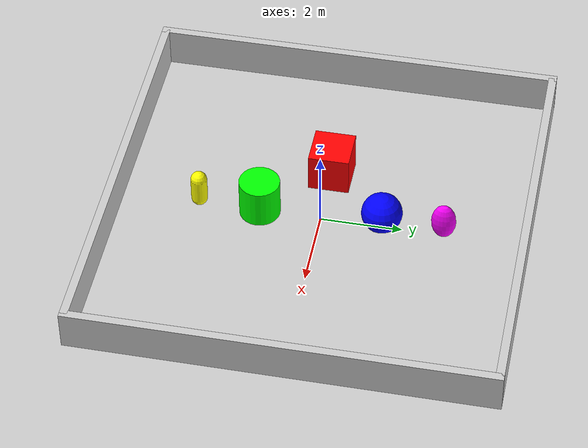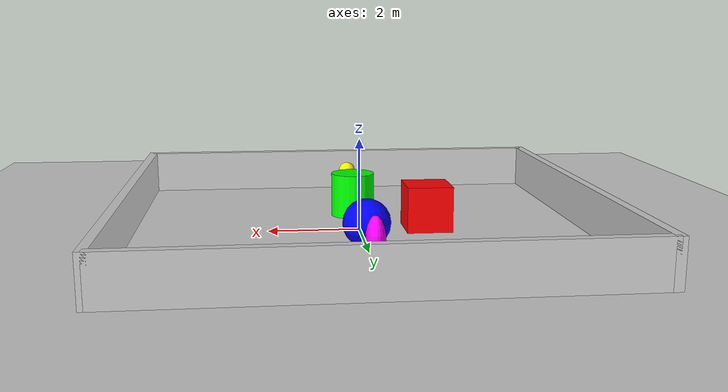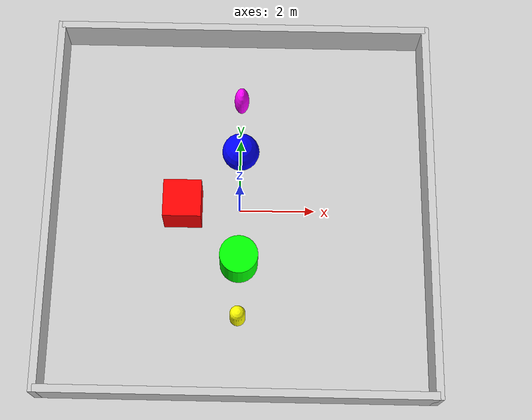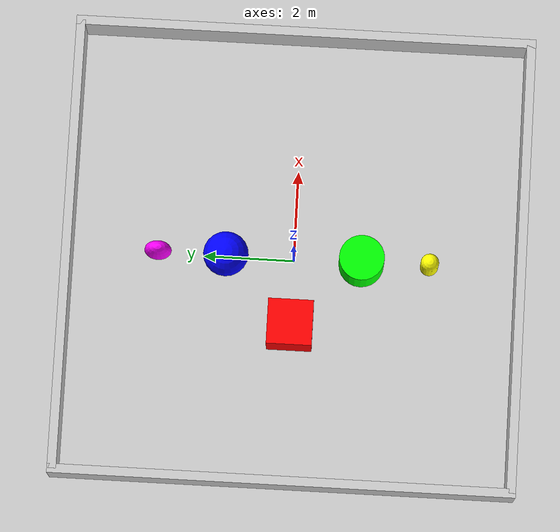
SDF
<sdf version='1.9'>
  <world name='minimal_scene'>
    <gui fullscreen='false'>
      <plugin name='3D View' filename='MinimalScene'>
        <ignition-gui>
          <title>3D View</title>
          <property type='bool' key='showTitleBar'>false</property>
          <property type='string' key='state'>docked</property>
        </ignition-gui>
        <engine>ogre2</engine>
        <scene>scene</scene>
        <ambient_light>0.4 0.4 0.4</ambient_light>
        <background_color>0.8 0.8 0.8</background_color>
        <camera_pose>-6 0 6 0 0.5 0</camera_pose>
        <camera_clip>
          <near>0.25</near>
          <far>25000</far>
        </camera_clip>
      </plugin>
      <plugin name='Entity context menu' filename='EntityContextMenuPlugin'>
        <ignition-gui>
          <property key='state' type='string'>floating</property>
          <property key='width' type='double'>5</property>
          <property key='height' type='double'>5</property>
          <property key='showTitleBar' type='bool'>false</property>
        </ignition-gui>
      </plugin>
      <plugin name='Scene Manager' filename='GzSceneManager'>
        <ignition-gui>
          <property key='resizable' type='bool'>false</property>
          <property key='width' type='double'>5</property>
          <property key='height' type='double'>5</property>
          <property key='state' type='string'>floating</property>
          <property key='showTitleBar' type='bool'>false</property>
        </ignition-gui>
      </plugin>
      <plugin name='Interactive view control' filename='InteractiveViewControl'>
        <ignition-gui>
          <property key='resizable' type='bool'>false</property>
          <property key='width' type='double'>5</property>
          <property key='height' type='double'>5</property>
          <property key='state' type='string'>floating</property>
          <property key='showTitleBar' type='bool'>false</property>
        </ignition-gui>
      </plugin>
      <plugin name='Camera Tracking' filename='CameraTracking'>
        <ignition-gui>
          <property key='resizable' type='bool'>false</property>
          <property key='width' type='double'>5</property>
          <property key='height' type='double'>5</property>
          <property key='state' type='string'>floating</property>
          <property key='showTitleBar' type='bool'>false</property>
        </ignition-gui>
      </plugin>
      <plugin name='Marker manager' filename='MarkerManager'>
        <ignition-gui>
          <property key='resizable' type='bool'>false</property>
          <property key='width' type='double'>5</property>
          <property key='height' type='double'>5</property>
          <property key='state' type='string'>floating</property>
          <property key='showTitleBar' type='bool'>false</property>
        </ignition-gui>
      </plugin>
      <plugin name='Select Entities' filename='SelectEntities'>
        <ignition-gui>
          <anchors target='Select entities'>
            <line own='right' target='right'/>
            <line own='top' target='top'/>
          </anchors>
          <property key='resizable' type='bool'>false</property>
          <property key='width' type='double'>5</property>
          <property key='height' type='double'>5</property>
          <property key='state' type='string'>floating</property>
          <property key='showTitleBar' type='bool'>false</property>
        </ignition-gui>
      </plugin>
      <plugin name='Visualization Capabilities' filename='VisualizationCapabilities'>
        <ignition-gui>
          <property key='resizable' type='bool'>false</property>
          <property key='width' type='double'>5</property>
          <property key='height' type='double'>5</property>
          <property key='state' type='string'>floating</property>
          <property key='showTitleBar' type='bool'>false</property>
        </ignition-gui>
      </plugin>
      <plugin name='Spawn Entities' filename='Spawn'>
        <ignition-gui>
          <anchors target='Select entities'>
            <line own='right' target='right'/>
            <line own='top' target='top'/>
          </anchors>
          <property key='resizable' type='bool'>false</property>
          <property key='width' type='double'>5</property>
          <property key='height' type='double'>5</property>
          <property key='state' type='string'>floating</property>
          <property key='showTitleBar' type='bool'>false</property>
        </ignition-gui>
      </plugin>
      <plugin name='World control' filename='WorldControl'>
        <ignition-gui>
          <title>World control</title>
          <property type='bool' key='showTitleBar'>false</property>
          <property type='bool' key='resizable'>false</property>
          <property type='double' key='height'>72</property>
          <property type='double' key='width'>121</property>
          <property type='double' key='z'>1</property>
          <property type='string' key='state'>floating</property>
          <anchors target='3D View'>
            <line own='left' target='left'/>
            <line own='bottom' target='bottom'/>
          </anchors>
        </ignition-gui>
        <play_pause>true</play_pause>
        <step>true</step>
        <start_paused>true</start_paused>
        <use_event>true</use_event>
      </plugin>
      <plugin name='World stats' filename='WorldStats'>
        <ignition-gui>
          <title>World stats</title>
          <property type='bool' key='showTitleBar'>false</property>
          <property type='bool' key='resizable'>false</property>
          <property type='double' key='height'>110</property>
          <property type='double' key='width'>290</property>
          <property type='double' key='z'>1</property>
          <property type='string' key='state'>floating</property>
          <anchors target='3D View'>
            <line own='right' target='right'/>
            <line own='bottom' target='bottom'/>
          </anchors>
        </ignition-gui>
        <sim_time>true</sim_time>
        <real_time>true</real_time>
        <real_time_factor>true</real_time_factor>
        <iterations>true</iterations>
      </plugin>
      <plugin name='Shapes' filename='Shapes'>
        <ignition-gui>
          <property key='resizable' type='bool'>false</property>
          <property key='x' type='double'>0</property>
          <property key='y' type='double'>0</property>
          <property key='width' type='double'>250</property>
          <property key='height' type='double'>50</property>
          <property key='state' type='string'>floating</property>
          <property key='showTitleBar' type='bool'>false</property>
          <property key='cardBackground' type='string'>#666666</property>
        </ignition-gui>
      </plugin>
      <plugin name='Lights' filename='Lights'>
        <ignition-gui>
          <property key='resizable' type='bool'>false</property>
          <property key='x' type='double'>250</property>
          <property key='y' type='double'>0</property>
          <property key='width' type='double'>150</property>
          <property key='height' type='double'>50</property>
          <property key='state' type='string'>floating</property>
          <property key='showTitleBar' type='bool'>false</property>
          <property key='cardBackground' type='string'>#666666</property>
        </ignition-gui>
      </plugin>
      <plugin name='Transform control' filename='TransformControl'>
        <ignition-gui>
          <property key='resizable' type='bool'>false</property>
          <property key='x' type='double'>0</property>
          <property key='y' type='double'>50</property>
          <property key='width' type='double'>250</property>
          <property key='height' type='double'>50</property>
          <property key='state' type='string'>floating</property>
          <property key='showTitleBar' type='bool'>false</property>
          <property key='cardBackground' type='string'>#777777</property>
        </ignition-gui>
        <legacy>false</legacy>
      </plugin>
      <plugin name='Screenshot' filename='Screenshot'>
        <ignition-gui>
          <property key='resizable' type='bool'>false</property>
          <property key='x' type='double'>250</property>
          <property key='y' type='double'>50</property>
          <property key='width' type='double'>50</property>
          <property key='height' type='double'>50</property>
          <property key='state' type='string'>floating</property>
          <property key='showTitleBar' type='bool'>false</property>
          <property key='cardBackground' type='string'>#777777</property>
        </ignition-gui>
      </plugin>
      <plugin name='VideoRecorder' filename='VideoRecorder'>
        <ignition-gui>
          <property key='resizable' type='bool'>false</property>
          <property key='x' type='double'>300</property>
          <property key='y' type='double'>50</property>
          <property key='width' type='double'>50</property>
          <property key='height' type='double'>50</property>
          <property key='state' type='string'>floating</property>
          <property key='showTitleBar' type='bool'>false</property>
          <property key='cardBackground' type='string'>#777777</property>
        </ignition-gui>
        <record_video>
          <use_sim_time>true</use_sim_time>
          <lockstep>true</lockstep>
          <bitrate>4000000</bitrate>
        </record_video>
        <legacy>false</legacy>
      </plugin>
      <plugin name='Component inspector' filename='ComponentInspector'>
        <ignition-gui>
          <property type='string' key='state'>docked_collapsed</property>
        </ignition-gui>
      </plugin>
      <plugin name='Entity tree' filename='EntityTree'>
        <ignition-gui>
          <property type='string' key='state'>docked_collapsed</property>
        </ignition-gui>
      </plugin>
      <plugin name='View angle' filename='ViewAngle'>
        <ignition-gui>
          <property type='string' key='state'>docked_collapsed</property>
        </ignition-gui>
        <legacy>false</legacy>
      </plugin>
    </gui>
    <plugin filename="ignition-gazebo-physics-system"
            name="ignition::gazebo::systems::Physics"/>
    <plugin filename="ignition-gazebo-user-commands-system"
            name="ignition::gazebo::systems::UserCommands"/>
    <plugin filename="ignition-gazebo-scene-broadcaster-system"
            name="ignition::gazebo::systems::SceneBroadcaster"/>
    <plugin filename="ignition-gazebo-sensors-system"
            name="ignition::gazebo::systems::Sensors">
      <render_engine>ogre2</render_engine>
    </plugin>
    <!-- IMU sensoru icin zorunlu world plugin; olmadan /imu hic yayin yapmaz -->
    <plugin filename="ignition-gazebo-imu-system"
            name="ignition::gazebo::systems::Imu"/>

    <gravity>0 0 -9.8</gravity>
    <magnetic_field>6e-06 2.3e-05 -4.2e-05</magnetic_field>
    <atmosphere type='adiabatic'/>
    <physics type='ode'>
      <max_step_size>0.001</max_step_size>
      <real_time_factor>1</real_time_factor>
      <real_time_update_rate>1000</real_time_update_rate>
    </physics>
    <scene>
      <ambient>0.4 0.4 0.4 1</ambient>
      <background>0.7 0.7 0.7 1</background>
      <shadows>true</shadows>
    </scene>
    <model name='ground_plane'>
      <static>true</static>
      <link name='link'>
        <collision name='collision'>
          <geometry>
            <plane>
              <normal>0 0 1</normal>
              <size>100 100</size>
            </plane>
          </geometry>
          <surface>
            <friction>
              <ode/>
            </friction>
            <bounce/>
            <contact/>
          </surface>
        </collision>
        <visual name='visual'>
          <geometry>
            <plane>
              <normal>0 0 1</normal>
              <size>100 100</size>
            </plane>
          </geometry>
          <material>
            <ambient>0.8 0.8 0.8 1</ambient>
            <diffuse>0.8 0.8 0.8 1</diffuse>
            <specular>0.8 0.8 0.8 1</specular>
          </material>
        </visual>
        <pose>0 0 0 0 -0 0</pose>
        <inertial>
          <pose>0 0 0 0 -0 0</pose>
          <mass>1</mass>
          <inertia>
            <ixx>1</ixx>
            <ixy>0</ixy>
            <ixz>0</ixz>
            <iyy>1</iyy>
            <iyz>0</iyz>
            <izz>1</izz>
          </inertia>
        </inertial>
        <enable_wind>false</enable_wind>
      </link>
      <pose>0 0 0 0 -0 0</pose>
      <self_collide>false</self_collide>
    </model>
    <model name='box'>
      <pose>-1.50544 -0 0.5 -0 0 -0</pose>
      <link name='box_link'>
        <inertial>
          <inertia>
            <ixx>0.16666</ixx>
            <ixy>0</ixy>
            <ixz>0</ixz>
            <iyy>0.16666</iyy>
            <iyz>0</iyz>
            <izz>0.16666</izz>
          </inertia>
          <mass>1</mass>
          <pose>0 0 0 0 -0 0</pose>
        </inertial>
        <collision name='box_collision'>
          <geometry>
            <box>
              <size>1 1 1</size>
            </box>
          </geometry>
          <surface>
            <friction>
              <ode/>
            </friction>
            <bounce/>
            <contact/>
          </surface>
        </collision>
        <visual name='box_visual'>
          <geometry>
            <box>
              <size>1 1 1</size>
            </box>
          </geometry>
          <material>
            <ambient>1 0 0 1</ambient>
            <diffuse>1 0 0 1</diffuse>
            <specular>1 0 0 1</specular>
          </material>
        </visual>
        <pose>0 0 0 0 -0 0</pose>
        <enable_wind>false</enable_wind>
      </link>
      <static>false</static>
      <self_collide>false</self_collide>
    </model>
    <model name='cylinder'>
      <pose>0 -1.5 0.5 0 -0 0</pose>
      <link name='cylinder_link'>
        <inertial>
          <inertia>
            <ixx>0.14580000000000001</ixx>
            <ixy>0</ixy>
            <ixz>0</ixz>
            <iyy>0.14580000000000001</iyy>
            <iyz>0</iyz>
            <izz>0.125</izz>
          </inertia>
          <mass>1</mass>
          <pose>0 0 0 0 -0 0</pose>
        </inertial>
        <collision name='cylinder_collision'>
          <geometry>
            <cylinder>
              <radius>0.5</radius>
              <length>1</length>
            </cylinder>
          </geometry>
          <surface>
            <friction>
              <ode/>
            </friction>
            <bounce/>
            <contact/>
          </surface>
        </collision>
        <visual name='cylinder_visual'>
          <geometry>
            <cylinder>
              <radius>0.5</radius>
              <length>1</length>
            </cylinder>
          </geometry>
          <material>
            <ambient>0 1 0 1</ambient>
            <diffuse>0 1 0 1</diffuse>
            <specular>0 1 0 1</specular>
          </material>
        </visual>
        <pose>0 0 0 0 -0 0</pose>
        <enable_wind>false</enable_wind>
      </link>
      <static>false</static>
      <self_collide>false</self_collide>
    </model>
    <model name='sphere'>
      <pose>0 1.5 0.5 0 -0 0</pose>
      <link name='sphere_link'>
        <inertial>
          <inertia>
            <ixx>0.10000000000000001</ixx>
            <ixy>0</ixy>
            <ixz>0</ixz>
            <iyy>0.10000000000000001</iyy>
            <iyz>0</iyz>
            <izz>0.10000000000000001</izz>
          </inertia>
          <mass>1</mass>
          <pose>0 0 0 0 -0 0</pose>
        </inertial>
        <collision name='sphere_collision'>
          <geometry>
            <sphere>
              <radius>0.5</radius>
            </sphere>
          </geometry>
          <surface>
            <friction>
              <ode/>
            </friction>
            <bounce/>
            <contact/>
          </surface>
        </collision>
        <visual name='sphere_visual'>
          <geometry>
            <sphere>
              <radius>0.5</radius>
            </sphere>
          </geometry>
          <material>
            <ambient>0 0 1 1</ambient>
            <diffuse>0 0 1 1</diffuse>
            <specular>0 0 1 1</specular>
          </material>
        </visual>
        <pose>0 0 0 0 -0 0</pose>
        <enable_wind>false</enable_wind>
      </link>
      <static>false</static>
      <self_collide>false</self_collide>
    </model>
    <model name='capsule'>
      <pose>0 -3 0.5 0 -0 0</pose>
      <link name='capsule_link'>
        <inertial>
          <inertia>
            <ixx>0.074153999999999998</ixx>
            <ixy>0</ixy>
            <ixz>0</ixz>
            <iyy>0.074153999999999998</iyy>
            <iyz>0</iyz>
            <izz>0.018769000000000001</izz>
          </inertia>
          <mass>1</mass>
          <pose>0 0 0 0 -0 0</pose>
        </inertial>
        <collision name='capsule_collision'>
          <geometry>
            <capsule>
              <radius>0.20000000000000001</radius>
              <length>0.59999999999999998</length>
            </capsule>
          </geometry>
          <surface>
            <friction>
              <ode/>
            </friction>
            <bounce/>
            <contact/>
          </surface>
        </collision>
        <visual name='capsule_visual'>
          <geometry>
            <capsule>
              <radius>0.20000000000000001</radius>
              <length>0.59999999999999998</length>
            </capsule>
          </geometry>
          <material>
            <ambient>1 1 0 1</ambient>
            <diffuse>1 1 0 1</diffuse>
            <specular>1 1 0 1</specular>
          </material>
        </visual>
        <pose>0 0 0 0 -0 0</pose>
        <enable_wind>false</enable_wind>
      </link>
      <static>false</static>
      <self_collide>false</self_collide>
    </model>
    <model name='ellipsoid'>
      <pose>0 3 0.5 0 -0 0</pose>
      <link name='ellipsoid_link'>
        <inertial>
          <inertia>
            <ixx>0.068000000000000005</ixx>
            <ixy>0</ixy>
            <ixz>0</ixz>
            <iyy>0.058000000000000003</iyy>
            <iyz>0</iyz>
            <izz>0.025999999999999999</izz>
          </inertia>
          <mass>1</mass>
          <pose>0 0 0 0 -0 0</pose>
        </inertial>
        <collision name='ellipsoid_collision'>
          <geometry>
            <ellipsoid>
              <radii>0.2 0.3 0.5</radii>
            </ellipsoid>
          </geometry>
          <surface>
            <friction>
              <ode/>
            </friction>
            <bounce/>
            <contact/>
          </surface>
        </collision>
        <visual name='ellipsoid_visual'>
          <geometry>
            <ellipsoid>
              <radii>0.2 0.3 0.5</radii>
            </ellipsoid>
          </geometry>
          <material>
            <ambient>1 0 1 1</ambient>
            <diffuse>1 0 1 1</diffuse>
            <specular>1 0 1 1</specular>
          </material>
        </visual>
        <pose>0 0 0 0 -0 0</pose>
        <enable_wind>false</enable_wind>
      </link>
      <static>false</static>
      <self_collide>false</self_collide>
    </model>
    <!-- 4 duvar: 10x10m oda, robot orijinde, LiDAR testi için -->
    <model name='wall_north'>
      <static>true</static>
      <pose>5 0 0.5 0 0 0</pose>
      <link name='link'>
        <collision name='collision'>
          <geometry>
            <box><size>0.2 10.2 1.0</size></box>
          </geometry>
        </collision>
        <visual name='visual'>
          <geometry>
            <box><size>0.2 10.2 1.0</size></box>
          </geometry>
          <material>
            <ambient>0.8 0.8 0.8 1</ambient>
            <diffuse>0.8 0.8 0.8 1</diffuse>
            <specular>0.3 0.3 0.3 1</specular>
          </material>
        </visual>
      </link>
    </model>

    <model name='wall_south'>
      <static>true</static>
      <pose>-5 0 0.5 0 0 0</pose>
      <link name='link'>
        <collision name='collision'>
          <geometry>
            <box><size>0.2 10.2 1.0</size></box>
          </geometry>
        </collision>
        <visual name='visual'>
          <geometry>
            <box><size>0.2 10.2 1.0</size></box>
          </geometry>
          <material>
            <ambient>0.8 0.8 0.8 1</ambient>
            <diffuse>0.8 0.8 0.8 1</diffuse>
            <specular>0.3 0.3 0.3 1</specular>
          </material>
        </visual>
      </link>
    </model>

    <model name='wall_east'>
      <static>true</static>
      <pose>0 5 0.5 0 0 0</pose>
      <link name='link'>
        <collision name='collision'>
          <geometry>
            <box><size>10 0.2 1.0</size></box>
          </geometry>
        </collision>
        <visual name='visual'>
          <geometry>
            <box><size>10 0.2 1.0</size></box>
          </geometry>
          <material>
            <ambient>0.8 0.8 0.8 1</ambient>
            <diffuse>0.8 0.8 0.8 1</diffuse>
            <specular>0.3 0.3 0.3 1</specular>
          </material>
        </visual>
      </link>
    </model>

    <model name='wall_west'>
      <static>true</static>
      <pose>0 -5 0.5 0 0 0</pose>
      <link name='link'>
        <collision name='collision'>
          <geometry>
            <box><size>10 0.2 1.0</size></box>
          </geometry>
        </collision>
        <visual name='visual'>
          <geometry>
            <box><size>10 0.2 1.0</size></box>
          </geometry>
          <material>
            <ambient>0.8 0.8 0.8 1</ambient>
            <diffuse>0.8 0.8 0.8 1</diffuse>
            <specular>0.3 0.3 0.3 1</specular>
          </material>
        </visual>
      </link>
    </model>

    <light name='sun' type='directional'>
      <pose>0 0 10 0 -0 0</pose>
      <cast_shadows>true</cast_shadows>
      <intensity>1</intensity>
      <direction>-0.5 0.1 -0.9</direction>
      <diffuse>0.8 0.8 0.8 1</diffuse>
      <specular>0.2 0.2 0.2 1</specular>
      <attenuation>
        <range>1000</range>
        <linear>0.01</linear>
        <constant>0.90000000000000002</constant>
        <quadratic>0.001</quadratic>
      </attenuation>
      <spot>
        <inner_angle>0</inner_angle>
        <outer_angle>0</outer_angle>
        <falloff>0</falloff>
      </spot>
    </light>
  </world>
</sdf>
